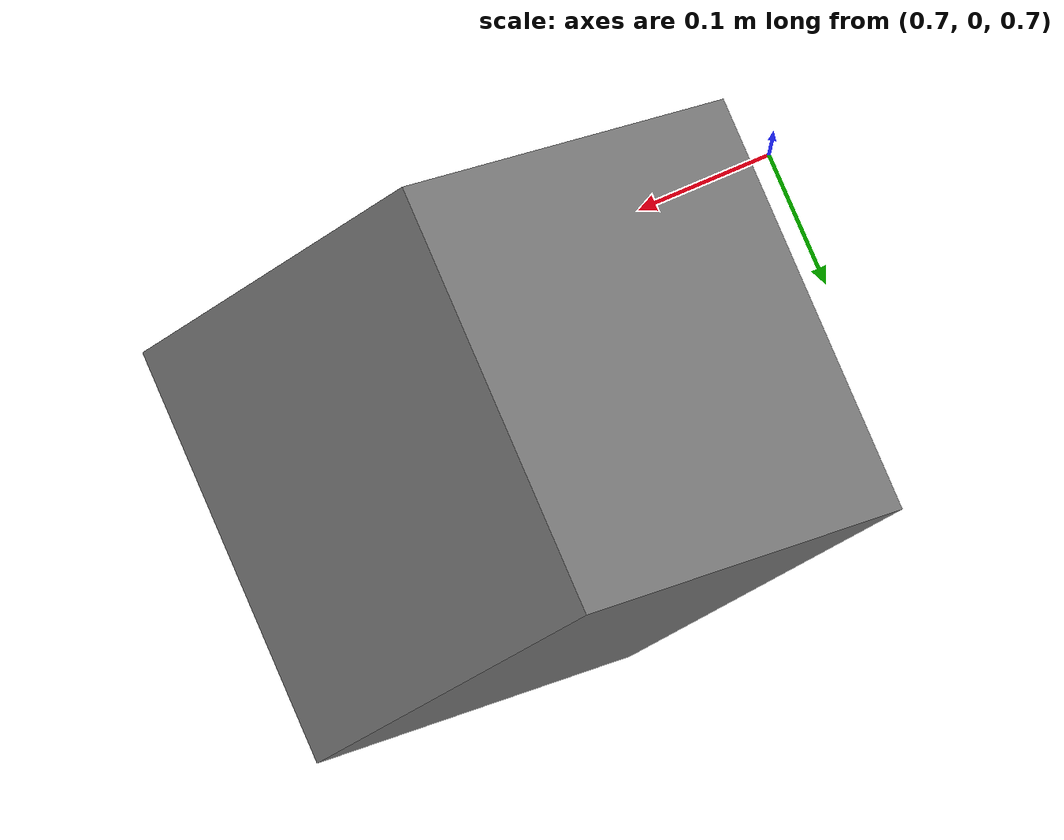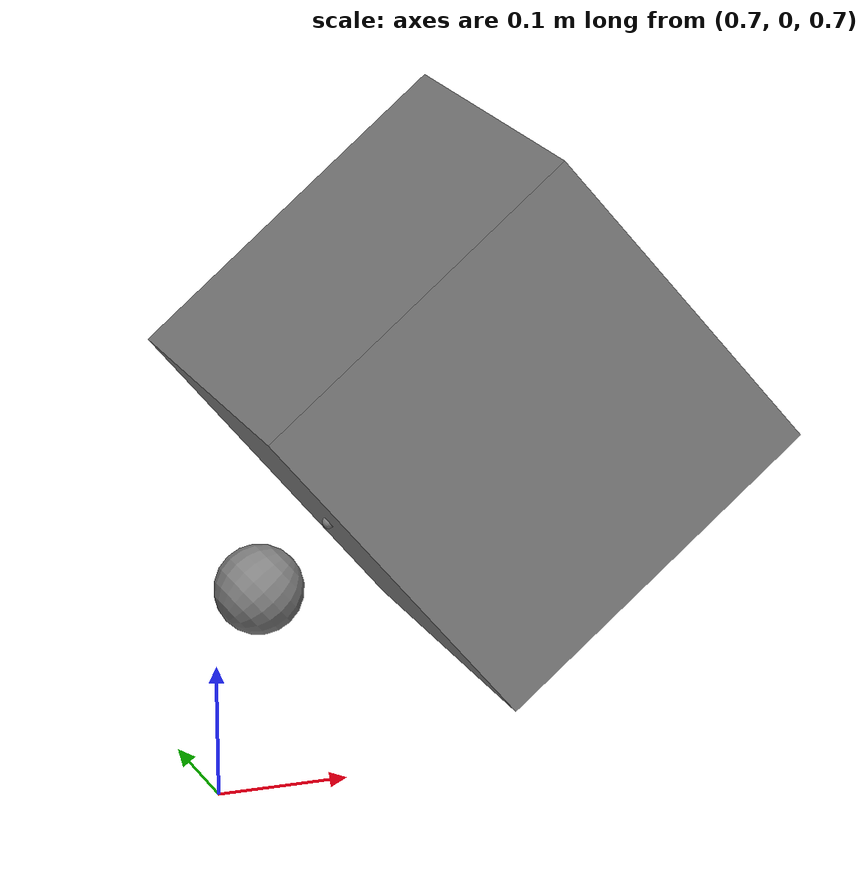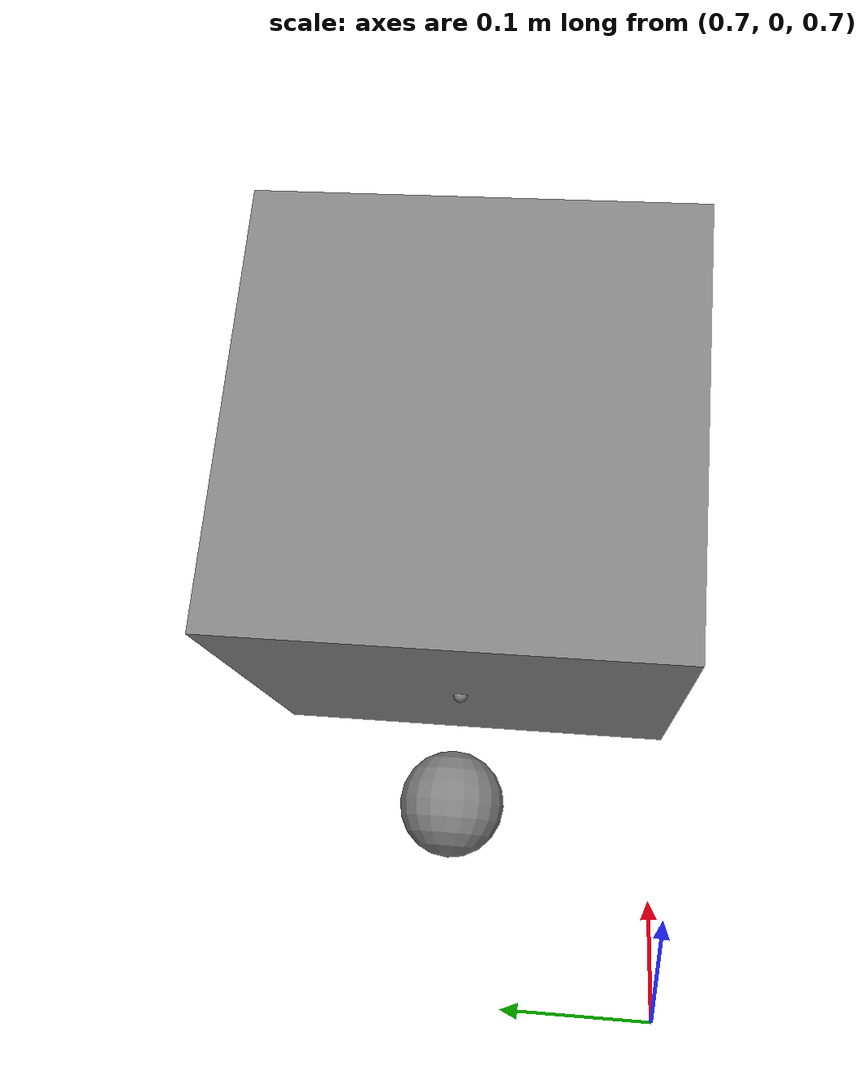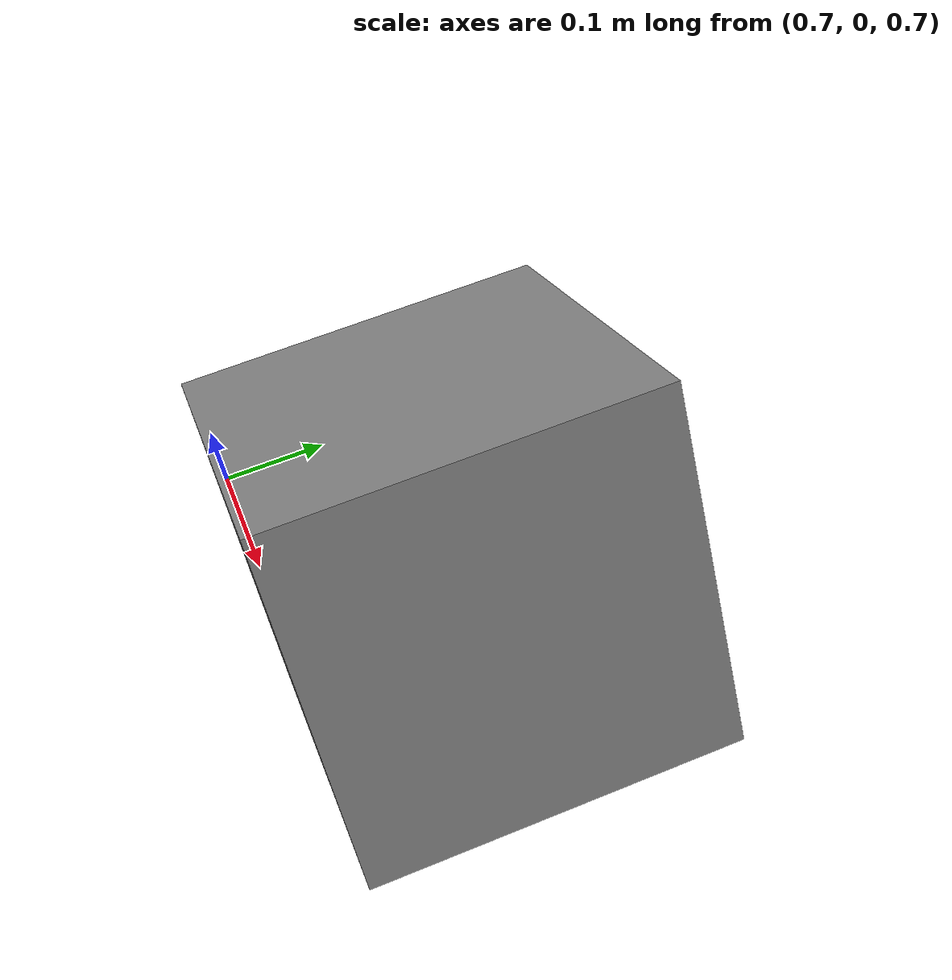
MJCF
<mujoco model="n201r_free_interface_fixture">
      <compiler angle="radian"/>
      <option timestep="0.002" gravity="0 0 0" integrator="RK4" iterations="50" tolerance="1e-10"/>
      <worldbody>
        <body name="tumbling_target" pos="0.94999999999999996 0.14000000000000001 0.94999999999999996" quat="0.64085638205578865 0.64085638205578865 0.29883623873011989 -0.29883623873011972">
          <freejoint name="target_free_joint"/>
          <inertial pos="0 0 0" mass="20.0" diaginertia="0.29999999999999999 0.29999999999999999 0.29999999999999999"/>
          <site name="target_grasp_site" pos="1.3877787807814457e-17 -0.14999999999999991 1.1607663811881715e-17" quat="-0.70710678118654746 0.70710678118654746 -1.0432065920350283e-17 -1.2164501735253651e-17"/>
          <geom type="box" size=".15 .15 .15" density="0" contype="0" conaffinity="0"/>
        </body>
        <body name="flange" pos="0.77859299447806796 0.13994339475156312 0.80617111123629093" quat="-5.4646159869387013e-07 0.42260546512220459 2.6989044887570911e-06 0.90631375408368509">
          <freejoint name="tool_free_joint"/>
          <inertial pos="0 0 0" mass="1.4" diaginertia="0.001 0.001 0.001"/>
          <site name="postgrasp_tool_interface" pos="-1.0611051682110628e-06 -5.6210357028042254e-05 0.073756812005483979" quat="-6.4534392155571763e-07 -1.411945803538416e-05 2.6769828055181196e-06 0.9999999998965291"/>
          <geom type="sphere" size=".035" density="0" contype="0" conaffinity="0"/>
        </body>
      </worldbody>
      <equality><weld name="postgrasp_latch" body1="flange" body2="tumbling_target"
        relpose="-5.2969430966720576e-06 -5.5407264920052001e-05 0.22375681194352653 9.5276374603705159e-06 -1.04402915866489e-05 0.70710867402607713 0.70710488820068784" anchor="1.3877787807814457e-17 -0.14999999999999991 1.1607663811881715e-17" solref="0.0040000000000000001 1" solimp="0.99984711154938022 0.99984711154938022 0.001 0.5 2"
        torquescale="0.15"/></equality>
    </mujoco>
